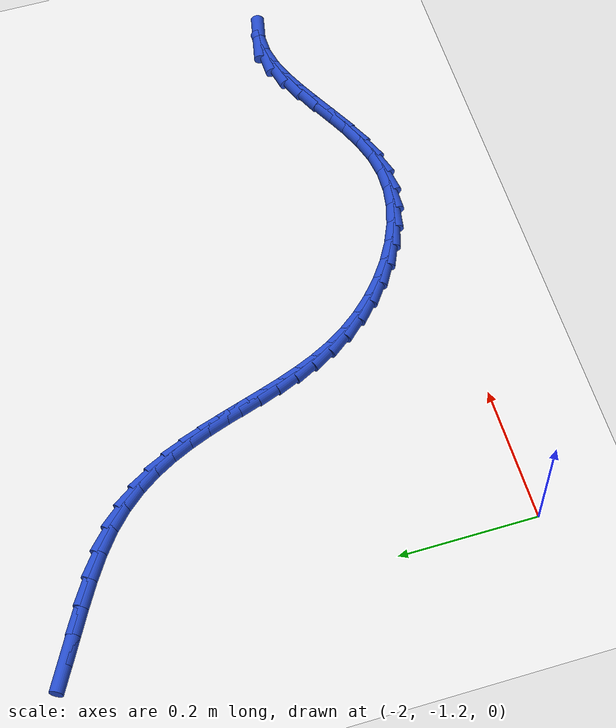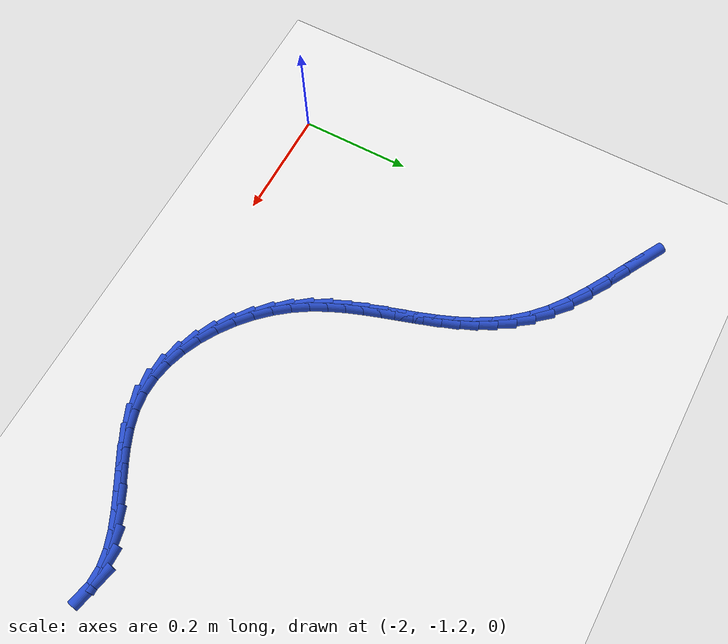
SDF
<sdf version="1.6">
 <world name="default">
  <model name="ground_plane">
   <static>1</static>
   <link name="link">
    <collision name="collision">
     <geometry><plane><normal>0 0 1</normal><size>100 100</size></plane></geometry>
     <surface><friction><ode><mu>100</mu><mu2>50</mu2></ode></friction></surface>
    </collision>
    <visual name="visual">
     <cast_shadows>0</cast_shadows>
     <geometry><plane><normal>0 0 1</normal><size>100 100</size></plane></geometry>
     <material>
      <script><uri>file://media/materials/scripts/gazebo.material</uri><name>Gazebo/WhiteGlow</name></script>
     </material>
    </visual>
   </link>
  </model>
  <model name="line">
   <link name="link_135">
    <pose>-2.0229768375145487 -0.54084193764831 0.01 0 1.57 -0.5094922586267574</pose>
    <collision name="collision">
     <geometry><cylinder><radius>0.01</radius><length>0.08</length></cylinder></geometry>
    </collision>
    <visual name="visual">
     <material>
      <script><name>Gazebo/Blue</name><uri>file://media/materials/scripts/gazebo.material</uri></script>
     </material>
     <geometry><cylinder><radius>0.01</radius><length>0.08</length></cylinder></geometry>
    </visual>
   </link>
   <link name="link_136">
    <pose>-1.9892691999361465 -0.5596741352232746 0.01 0 1.57 -0.5063179836031275</pose>
    <collision name="collision">
     <geometry><cylinder><radius>0.01</radius><length>0.08</length></cylinder></geometry>
    </collision>
    <visual name="visual">
     <material>
      <script><name>Gazebo/Blue</name><uri>file://media/materials/scripts/gazebo.material</uri></script>
     </material>
     <geometry><cylinder><radius>0.01</radius><length>0.08</length></cylinder></geometry>
    </visual>
   </link>
   <link name="link_137">
    <pose>-1.9541113296012693 -0.579170389935486 0.01 0 1.57 -0.5268858832040282</pose>
    <collision name="collision">
     <geometry><cylinder><radius>0.01</radius><length>0.08</length></cylinder></geometry>
    </collision>
    <visual name="visual">
     <material>
      <script><name>Gazebo/Blue</name><uri>file://media/materials/scripts/gazebo.material</uri></script>
     </material>
     <geometry><cylinder><radius>0.01</radius><length>0.08</length></cylinder></geometry>
    </visual>
   </link>
   <link name="link_138">
    <pose>-1.9190693879828973 -0.5995557391185052 0.01 0 1.57 -0.5724790887338997</pose>
    <collision name="collision">
     <geometry><cylinder><radius>0.01</radius><length>0.08</length></cylinder></geometry>
    </collision>
    <visual name="visual">
     <material>
      <script><name>Gazebo/Blue</name><uri>file://media/materials/scripts/gazebo.material</uri></script>
     </material>
     <geometry><cylinder><radius>0.01</radius><length>0.08</length></cylinder></geometry>
    </visual>
   </link>
   <link name="link_139">
    <pose>-1.8857095365540095 -0.6210552201058935 0.01 0 1.57 -0.6488736216215506</pose>
    <collision name="collision">
     <geometry><cylinder><radius>0.01</radius><length>0.08</length></cylinder></geometry>
    </collision>
    <visual name="visual">
     <material>
      <script><name>Gazebo/Blue</name><uri>file://media/materials/scripts/gazebo.material</uri></script>
     </material>
     <geometry><cylinder><radius>0.01</radius><length>0.08</length></cylinder></geometry>
    </visual>
   </link>
   <link name="link_140">
    <pose>-1.8555967281657666 -0.6438936350463437 0.01 0 1.57 -0.7548240071514232</pose>
    <collision name="collision">
     <geometry><cylinder><radius>0.01</radius><length>0.08</length></cylinder></geometry>
    </collision>
    <visual name="visual">
     <material>
      <script><name>Gazebo/Blue</name><uri>file://media/materials/scripts/gazebo.material</uri></script>
     </material>
     <geometry><cylinder><radius>0.01</radius><length>0.08</length></cylinder></geometry>
    </visual>
   </link>
   <link name="link_141">
    <pose>-1.8297647521552092 -0.6681924273544928 0.01 0 1.57 -0.8639050148904488</pose>
    <collision name="collision">
     <geometry><cylinder><radius>0.01</radius><length>0.08</length></cylinder></geometry>
    </collision>
    <visual name="visual">
     <material>
      <script><name>Gazebo/Blue</name><uri>file://media/materials/scripts/gazebo.material</uri></script>
     </material>
     <geometry><cylinder><radius>0.01</radius><length>0.08</length></cylinder></geometry>
    </visual>
   </link>
   <link name="link_142">
    <pose>-1.8078855004533347 -0.6938080297880759 0.01 0 1.57 -0.9664477091756978</pose>
    <collision name="collision">
     <geometry><cylinder><radius>0.01</radius><length>0.08</length></cylinder></geometry>
    </collision>
    <visual name="visual">
     <material>
      <script><name>Gazebo/Blue</name><uri>file://media/materials/scripts/gazebo.material</uri></script>
     </material>
     <geometry><cylinder><radius>0.01</radius><length>0.08</length></cylinder></geometry>
    </visual>
   </link>
   <link name="link_143">
    <pose>-1.789415653393252 -0.7205549972315921 0.01 0 1.57 -1.057679886764872</pose>
    <collision name="collision">
     <geometry><cylinder><radius>0.01</radius><length>0.08</length></cylinder></geometry>
    </collision>
    <visual name="visual">
     <material>
      <script><name>Gazebo/Blue</name><uri>file://media/materials/scripts/gazebo.material</uri></script>
     </material>
     <geometry><cylinder><radius>0.01</radius><length>0.08</length></cylinder></geometry>
    </visual>
   </link>
   <link name="link_144">
    <pose>-1.77381189130807 -0.7482478845695414 0.01 0 1.57 -1.1340894835718445</pose>
    <collision name="collision">
     <geometry><cylinder><radius>0.01</radius><length>0.08</length></cylinder></geometry>
    </collision>
    <visual name="visual">
     <material>
      <script><name>Gazebo/Blue</name><uri>file://media/materials/scripts/gazebo.material</uri></script>
     </material>
     <geometry><cylinder><radius>0.01</radius><length>0.08</length></cylinder></geometry>
    </visual>
   </link>
   <link name="link_145">
    <pose>-1.760530894530899 -0.7767012466864214 0.01 0 1.57 -1.1935551418051962</pose>
    <collision name="collision">
     <geometry><cylinder><radius>0.01</radius><length>0.08</length></cylinder></geometry>
    </collision>
    <visual name="visual">
     <material>
      <script><name>Gazebo/Blue</name><uri>file://media/materials/scripts/gazebo.material</uri></script>
     </material>
     <geometry><cylinder><radius>0.01</radius><length>0.08</length></cylinder></geometry>
    </visual>
   </link>
   <link name="link_146">
    <pose>-1.749029343394847 -0.8057296384667318 0.01 0 1.57 -1.2350565490857655</pose>
    <collision name="collision">
     <geometry><cylinder><radius>0.01</radius><length>0.08</length></cylinder></geometry>
    </collision>
    <visual name="visual">
     <material>
      <script><name>Gazebo/Blue</name><uri>file://media/materials/scripts/gazebo.material</uri></script>
     </material>
     <geometry><cylinder><radius>0.01</radius><length>0.08</length></cylinder></geometry>
    </visual>
   </link>
   <link name="link_147">
    <pose>-1.7387639182330235 -0.8351476147949721 0.01 0 1.57 -1.2582315023939357</pose>
    <collision name="collision">
     <geometry><cylinder><radius>0.01</radius><length>0.08</length></cylinder></geometry>
    </collision>
    <visual name="visual">
     <material>
      <script><name>Gazebo/Blue</name><uri>file://media/materials/scripts/gazebo.material</uri></script>
     </material>
     <geometry><cylinder><radius>0.01</radius><length>0.08</length></cylinder></geometry>
    </visual>
   </link>
   <link name="link_148">
    <pose>-1.7291912993785372 -0.8647697305556421 0.01 0 1.57 -1.2629897116806204</pose>
    <collision name="collision">
     <geometry><cylinder><radius>0.01</radius><length>0.08</length></cylinder></geometry>
    </collision>
    <visual name="visual">
     <material>
      <script><name>Gazebo/Blue</name><uri>file://media/materials/scripts/gazebo.material</uri></script>
     </material>
     <geometry><cylinder><radius>0.01</radius><length>0.08</length></cylinder></geometry>
    </visual>
   </link>
   <link name="link_149">
    <pose>-1.719768167164498 -0.8944105406332392 0.01 0 1.57 -1.2492815598493594</pose>
    <collision name="collision">
     <geometry><cylinder><radius>0.01</radius><length>0.08</length></cylinder></geometry>
    </collision>
    <visual name="visual">
     <material>
      <script><name>Gazebo/Blue</name><uri>file://media/materials/scripts/gazebo.material</uri></script>
     </material>
     <geometry><cylinder><radius>0.01</radius><length>0.08</length></cylinder></geometry>
    </visual>
   </link>
   <link name="link_150">
    <pose>-1.7099512019240146 -0.9238845999122636 0.01 0 1.57 -1.217049971007881</pose>
    <collision name="collision">
     <geometry><cylinder><radius>0.01</radius><length>0.08</length></cylinder></geometry>
    </collision>
    <visual name="visual">
     <material>
      <script><name>Gazebo/Blue</name><uri>file://media/materials/scripts/gazebo.material</uri></script>
     </material>
     <geometry><cylinder><radius>0.01</radius><length>0.08</length></cylinder></geometry>
    </visual>
   </link>
   <link name="link_151">
    <pose>-1.6991970839901955 -0.9530064632772139 0.01 0 1.57 -1.1663713397269913</pose>
    <collision name="collision">
     <geometry><cylinder><radius>0.01</radius><length>0.08</length></cylinder></geometry>
    </collision>
    <visual name="visual">
     <material>
      <script><name>Gazebo/Blue</name><uri>file://media/materials/scripts/gazebo.material</uri></script>
     </material>
     <geometry><cylinder><radius>0.01</radius><length>0.08</length></cylinder></geometry>
    </visual>
   </link>
   <link name="link_152">
    <pose>-1.6869624936961505 -0.9815906856125899 0.01 0 1.57 -1.0977802819923852</pose>
    <collision name="collision">
     <geometry><cylinder><radius>0.01</radius><length>0.08</length></cylinder></geometry>
    </collision>
    <visual name="visual">
     <material>
      <script><name>Gazebo/Blue</name><uri>file://media/materials/scripts/gazebo.material</uri></script>
     </material>
     <geometry><cylinder><radius>0.01</radius><length>0.08</length></cylinder></geometry>
    </visual>
   </link>
   <link name="link_153">
    <pose>-1.6727041113749883 -1.009451821802891 0.01 0 1.57 -1.012727698388617</pose>
    <collision name="collision">
     <geometry><cylinder><radius>0.01</radius><length>0.08</length></cylinder></geometry>
    </collision>
    <visual name="visual">
     <material>
      <script><name>Gazebo/Blue</name><uri>file://media/materials/scripts/gazebo.material</uri></script>
     </material>
     <geometry><cylinder><radius>0.01</radius><length>0.08</length></cylinder></geometry>
    </visual>
   </link>
   <link name="link_154">
    <pose>-1.6558786173598188 -1.0364044267326151 0.01 0 1.57 -0.9153490776245895</pose>
    <collision name="collision">
     <geometry><cylinder><radius>0.01</radius><length>0.08</length></cylinder></geometry>
    </collision>
    <visual name="visual">
     <material>
      <script><name>Gazebo/Blue</name><uri>file://media/materials/scripts/gazebo.material</uri></script>
     </material>
     <geometry><cylinder><radius>0.01</radius><length>0.08</length></cylinder></geometry>
    </visual>
   </link>
   <link name="link_155">
    <pose>-1.6360141750313983 -1.0622414781623541 0.01 0 1.57 -0.8183012564527906</pose>
    <collision name="collision">
     <geometry><cylinder><radius>0.01</radius><length>0.08</length></cylinder></geometry>
    </collision>
    <visual name="visual">
     <material>
      <script><name>Gazebo/Blue</name><uri>file://media/materials/scripts/gazebo.material</uri></script>
     </material>
     <geometry><cylinder><radius>0.01</radius><length>0.08</length></cylinder></geometry>
    </visual>
   </link>
   <link name="link_156">
    <pose>-1.6132287444231193 -1.0865779240138294 0.01 0 1.57 -0.7238979607944199</pose>
    <collision name="collision">
     <geometry><cylinder><radius>0.01</radius><length>0.08</length></cylinder></geometry>
    </collision>
    <visual name="visual">
     <material>
      <script><name>Gazebo/Blue</name><uri>file://media/materials/scripts/gazebo.material</uri></script>
     </material>
     <geometry><cylinder><radius>0.01</radius><length>0.08</length></cylinder></geometry>
    </visual>
   </link>
   <link name="link_157">
    <pose>-1.587930772663403 -1.108941028817394 0.01 0 1.57 -0.6285364853272978</pose>
    <collision name="collision">
     <geometry><cylinder><radius>0.01</radius><length>0.08</length></cylinder></geometry>
    </collision>
    <visual name="visual">
     <material>
      <script><name>Gazebo/Blue</name><uri>file://media/materials/scripts/gazebo.material</uri></script>
     </material>
     <geometry><cylinder><radius>0.01</radius><length>0.08</length></cylinder></geometry>
    </visual>
   </link>
   <link name="link_158">
    <pose>-1.5605307404757784 -1.1288574432636844 0.01 0 1.57 -0.5287478763179828</pose>
    <collision name="collision">
     <geometry><cylinder><radius>0.01</radius><length>0.08</length></cylinder></geometry>
    </collision>
    <visual name="visual">
     <material>
      <script><name>Gazebo/Blue</name><uri>file://media/materials/scripts/gazebo.material</uri></script>
     </material>
     <geometry><cylinder><radius>0.01</radius><length>0.08</length></cylinder></geometry>
    </visual>
   </link>
   <link name="link_159">
    <pose>-1.5314391285837725 -1.1458538180433384 0.01 0 1.57 -0.4210801023648987</pose>
    <collision name="collision">
     <geometry><cylinder><radius>0.01</radius><length>0.08</length></cylinder></geometry>
    </collision>
    <visual name="visual">
     <material>
      <script><name>Gazebo/Blue</name><uri>file://media/materials/scripts/gazebo.material</uri></script>
     </material>
     <geometry><cylinder><radius>0.01</radius><length>0.08</length></cylinder></geometry>
    </visual>
   </link>
   <link name="link_160">
    <pose>-1.5010664177109125 -1.1594568038469943 0.01 0 1.57 -0.30208883198783526</pose>
    <collision name="collision">
     <geometry><cylinder><radius>0.01</radius><length>0.08</length></cylinder></geometry>
    </collision>
    <visual name="visual">
     <material>
      <script><name>Gazebo/Blue</name><uri>file://media/materials/scripts/gazebo.material</uri></script>
     </material>
     <geometry><cylinder><radius>0.01</radius><length>0.08</length></cylinder></geometry>
    </visual>
   </link>
   <link name="link_161">
    <pose>-1.4698230885807264 -1.1691930513652888 0.01 0 1.57 -0.168591580405526</pose>
    <collision name="collision">
     <geometry><cylinder><radius>0.01</radius><length>0.08</length></cylinder></geometry>
    </collision>
    <visual name="visual">
     <material>
      <script><name>Gazebo/Blue</name><uri>file://media/materials/scripts/gazebo.material</uri></script>
     </material>
     <geometry><cylinder><radius>0.01</radius><length>0.08</length></cylinder></geometry>
    </visual>
   </link>
   <link name="link_162">
    <pose>-1.4381196219167394 -1.1745892112888598 0.01 0 1.57 -0.01834961577593826</pose>
    <collision name="collision">
     <geometry><cylinder><radius>0.01</radius><length>0.08</length></cylinder></geometry>
    </collision>
    <visual name="visual">
     <material>
      <script><name>Gazebo/Blue</name><uri>file://media/materials/scripts/gazebo.material</uri></script>
     </material>
     <geometry><cylinder><radius>0.01</radius><length>0.08</length></cylinder></geometry>
    </visual>
   </link>
   <link name="link_163">
    <pose>-1.4063664984424826 -1.1751719343083449 0.01 0 1.57 0.14770418836648205</pose>
    <collision name="collision">
     <geometry><cylinder><radius>0.01</radius><length>0.08</length></cylinder></geometry>
    </collision>
    <visual name="visual">
     <material>
      <script><name>Gazebo/Blue</name><uri>file://media/materials/scripts/gazebo.material</uri></script>
     </material>
     <geometry><cylinder><radius>0.01</radius><length>0.08</length></cylinder></geometry>
    </visual>
   </link>
   <link name="link_164">
    <pose>-1.374965792491973 -1.1704998930983337 0.01 0 1.57 0.29946022292607877</pose>
    <collision name="collision">
     <geometry><cylinder><radius>0.01</radius><length>0.08</length></cylinder></geometry>
    </collision>
    <visual name="visual">
     <material>
      <script><name>Gazebo/Blue</name><uri>file://media/materials/scripts/gazebo.material</uri></script>
     </material>
     <geometry><cylinder><radius>0.01</radius><length>0.08</length></cylinder></geometry>
    </visual>
   </link>
   <link name="link_165">
    <pose>-1.3440995025382563 -1.160970082859477 0.01 0 1.57 0.40680666897637485</pose>
    <collision name="collision">
     <geometry><cylinder><radius>0.01</radius><length>0.08</length></cylinder></geometry>
    </collision>
    <visual name="visual">
     <material>
      <script><name>Gazebo/Blue</name><uri>file://media/materials/scripts/gazebo.material</uri></script>
     </material>
     <geometry><cylinder><radius>0.01</radius><length>0.08</length></cylinder></geometry>
    </visual>
   </link>
   <link name="link_166">
    <pose>-1.3137135904032688 -1.147878619853349 0.01 0 1.57 0.47234343661712863</pose>
    <collision name="collision">
     <geometry><cylinder><radius>0.01</radius><length>0.08</length></cylinder></geometry>
    </collision>
    <visual name="visual">
     <material>
      <script><name>Gazebo/Blue</name><uri>file://media/materials/scripts/gazebo.material</uri></script>
     </material>
     <geometry><cylinder><radius>0.01</radius><length>0.08</length></cylinder></geometry>
    </visual>
   </link>
   <link name="link_167">
    <pose>-1.2837424144552108 -1.1325658207213671 0.01 0 1.57 0.5002911917029959</pose>
    <collision name="collision">
     <geometry><cylinder><radius>0.01</radius><length>0.08</length></cylinder></geometry>
    </collision>
    <visual name="visual">
     <material>
      <script><name>Gazebo/Blue</name><uri>file://media/materials/scripts/gazebo.material</uri></script>
     </material>
     <geometry><cylinder><radius>0.01</radius><length>0.08</length></cylinder></geometry>
    </visual>
   </link>
   <link name="link_168">
    <pose>-1.2541203330622788 -1.1163720021049477 0.01 0 1.57 0.4922698606727532</pose>
    <collision name="collision">
     <geometry><cylinder><radius>0.01</radius><length>0.08</length></cylinder></geometry>
    </collision>
    <visual name="visual">
     <material>
      <script><name>Gazebo/Blue</name><uri>file://media/materials/scripts/gazebo.material</uri></script>
     </material>
     <geometry><cylinder><radius>0.01</radius><length>0.08</length></cylinder></geometry>
    </visual>
   </link>
   <link name="link_169">
    <pose>-1.2247817045926717 -1.1006374806455077 0.01 0 1.57 0.4463168174478922</pose>
    <collision name="collision">
     <geometry><cylinder><radius>0.01</radius><length>0.08</length></cylinder></geometry>
    </collision>
    <visual name="visual">
     <material>
      <script><name>Gazebo/Blue</name><uri>file://media/materials/scripts/gazebo.material</uri></script>
     </material>
     <geometry><cylinder><radius>0.01</radius><length>0.08</length></cylinder></geometry>
    </visual>
   </link>
   <link name="link_170">
    <pose>-1.1956608874145869 -1.0867025729844635 0.01 0 1.57 0.3567030690687756</pose>
    <collision name="collision">
     <geometry><cylinder><radius>0.01</radius><length>0.08</length></cylinder></geometry>
    </collision>
    <visual name="visual">
     <material>
      <script><name>Gazebo/Blue</name><uri>file://media/materials/scripts/gazebo.material</uri></script>
     </material>
     <geometry><cylinder><radius>0.01</radius><length>0.08</length></cylinder></geometry>
    </visual>
   </link>
   <link name="link_171">
    <pose>-1.166692239896224 -1.0759075957632322 0.01 0 1.57 0.21525085474994501</pose>
    <collision name="collision">
     <geometry><cylinder><radius>0.01</radius><length>0.08</length></cylinder></geometry>
    </collision>
    <visual name="visual">
     <material>
      <script><name>Gazebo/Blue</name><uri>file://media/materials/scripts/gazebo.material</uri></script>
     </material>
     <geometry><cylinder><radius>0.01</radius><length>0.08</length></cylinder></geometry>
    </visual>
   </link>
   <link name="link_172">
    <pose>-1.1378101204057804 -1.0695928656232305 0.01 0 1.57 0.01712047898159539</pose>
    <collision name="collision">
     <geometry><cylinder><radius>0.01</radius><length>0.08</length></cylinder></geometry>
    </collision>
    <visual name="visual">
     <material>
      <script><name>Gazebo/Blue</name><uri>file://media/materials/scripts/gazebo.material</uri></script>
     </material>
     <geometry><cylinder><radius>0.01</radius><length>0.08</length></cylinder></geometry>
    </visual>
   </link>
   <link name="link_173">
    <pose>-1.1089488873114544 -1.0690986992058746 0.01 0 1.57 -0.2170392342261473</pose>
    <collision name="collision">
     <geometry><cylinder><radius>0.01</radius><length>0.08</length></cylinder></geometry>
    </collision>
    <visual name="visual">
     <material>
      <script><name>Gazebo/Blue</name><uri>file://media/materials/scripts/gazebo.material</uri></script>
     </material>
     <geometry><cylinder><radius>0.01</radius><length>0.08</length></cylinder></geometry>
    </visual>
   </link>
  </model>
 </world>
</sdf>
